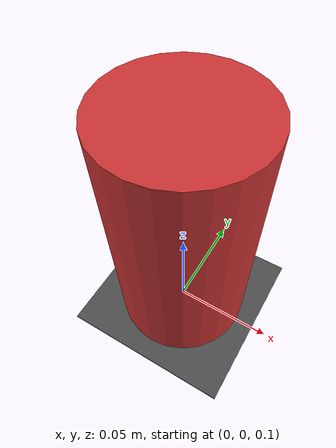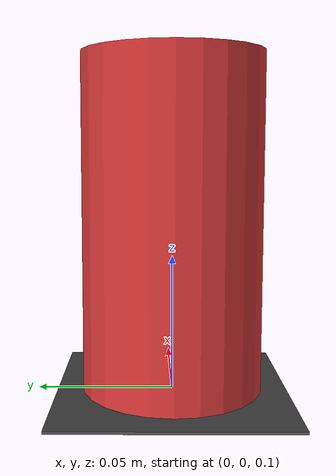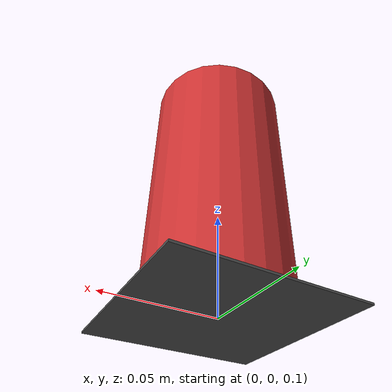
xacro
<?xml version="1.0"?>
<robot name="ft_sensor_test" xmlns:xacro="http://www.ros.org/wiki/xacro">
    <!-- Base Link -->
    <link name="world"/>

    <!-- Cover plate -->
    <link name="cover_plate">
        <inertial>
            <mass value="0.1"/>
            <origin xyz="0 0 0" rpy="0 0 0"/>
            <inertia ixx="0.0001" ixy="0.0" ixz="0.0"
                     iyy="0.0001" iyz="0.0"
                     izz="0.0001"/>
        </inertial>
        <visual>
            <geometry>
                <box size="0.085 0.085 0.001"/>
            </geometry>
            <material name="gray">
                <color rgba="0.3 0.3 0.3 1"/>
            </material>
        </visual>
        <collision>
            <geometry>
                <box size="0.085 0.085 0.001"/>
            </geometry>
        </collision>
    </link>
    <link name="coke_can">
        <inertial>
            <mass value="1.390"/>  <!-- Mass of a full 12oz can -->
            <origin xyz="0 0 0.0615" rpy="0 0 0"/>
            <inertia ixx="0.00025" ixy="0.0" ixz="0.0"
                     iyy="0.00025" iyz="0.0"
                     izz="0.00001"/>
        </inertial>
        <visual>
            <geometry>
                <cylinder radius="0.0333" length="0.123"/>  <!-- Standard can dimensions -->
            </geometry>
            <material name="red">
                <color rgba="0.8 0.2 0.2 1"/>
            </material>
        </visual>
        <collision>
            <geometry>
                <cylinder radius="0.0333" length="0.123"/>
            </geometry>
        </collision>
    </link>
    <!-- Fixed joint to world -->
    <joint name="world_joint" type="fixed">
        <parent link="world"/>
        <child link="cover_plate"/>
        <origin xyz="0 0 0.1" rpy="0 0 0"/>
    </joint>

    <!-- Sensor Link 1 -->
    <link name="sensor_link_01">
        <inertial>
            <mass value="0.1"/>
            <origin rpy="0 0 0" xyz="0 0 0"/>
            <inertia ixx="0.0001" ixy="0.0" ixz="0.0"
                     iyy="0.0001" iyz="0.0"
                     izz="0.0001"/>
        </inertial>
        <visual>
            <geometry>
                <box size="0.019 0.019 0.005"/>
            </geometry>
            <material name="blue">
                <color rgba="0.2 0.2 0.8 0.9"/>
            </material>
        </visual>
        <collision>
            <geometry>
                <box size="0.019 0.019 0.005"/>
            </geometry>
        </collision>
    </link>

    <!-- Sensor Link 2 -->
    <link name="sensor_link_02">
        <inertial>
            <mass value="0.1"/>
            <origin rpy="0 0 0" xyz="0 0 0"/>
            <inertia ixx="0.0001" ixy="0.0" ixz="0.0"
                     iyy="0.0001" iyz="0.0"
                     izz="0.0001"/>
        </inertial>
        <visual>
            <geometry>
                <box size="0.019 0.019 0.005"/>
            </geometry>
            <material name="red">
                <color rgba="0.8 0.2 0.2 0.9"/>
            </material>
        </visual>
        <collision>
            <geometry>
                <box size="0.019 0.019 0.005"/>
            </geometry>
        </collision>
    </link>
    <joint name="can_joint" type="fixed">
        <parent link="cover_plate"/>
        <child link="coke_can"/>
        <origin xyz="0 0 0.0625" rpy="0 0 0"/>  <!-- Positioned at center of plate -->
    </joint>
    <!-- Sensor Joint 1 -->
    <joint name="sensor_joint_01" type="fixed">
        <parent link="cover_plate"/>
        <child link="sensor_link_01"/>
        <origin xyz="-0.02 0 0.0025" rpy="0 0 0"/>
    </joint>

    <!-- Sensor Joint 2 -->
    <joint name="sensor_joint_02" type="fixed">
        <parent link="cover_plate"/>
        <child link="sensor_link_02"/>
        <origin xyz="0.02 0 0.0025" rpy="0 0 0"/>
    </joint>

    <!-- Gazebo-specific elements -->
    <gazebo reference="cover_plate">
        <material>Gazebo/Gray</material>
    </gazebo>

    <gazebo reference="sensor_link_01">
        <material>Gazebo/Blue</material>
    </gazebo>

    <gazebo reference="sensor_link_02">
        <material>Gazebo/Red</material>
    </gazebo>

    <!-- Force-Torque Sensor 1 Plugin -->
 <!-- Force-Torque Sensor 1 Plugin -->
<!-- Force-Torque Sensor 1 Plugin -->
<!-- Force-Torque Sensor 1 Plugin -->
    <gazebo>
        <plugin name="ft_sensor_01" filename="libgazebo_ros_ft_sensor.so">
            <ros>
                <namespace>/gazebo/default</namespace>
                <remapping>wrench:=panda/sensor_01/wrench</remapping>
            </ros>
            <joint_name>sensor_joint_01</joint_name>
            <body_name>cover_plate</body_name>
            <frame_name>sensor_link_01</frame_name>
            <gaussian_noise>0.01</gaussian_noise>
            <update_rate>50</update_rate>
        </plugin>
    </gazebo>

    <!-- Force-Torque Sensor 2 Plugin -->
    <gazebo>
        <plugin name="ft_sensor_02" filename="libgazebo_ros_ft_sensor.so">
            <ros>
                <namespace>/gazebo/default</namespace>
                <remapping>wrench:=panda/sensor_02/wrench</remapping>
            </ros>
            <joint_name>sensor_joint_02</joint_name>
            <body_name>cover_plate</body_name>
            <frame_name>sensor_link_02</frame_name>
            <gaussian_noise>0.01</gaussian_noise>
            <update_rate>50</update_rate>
        </plugin>
    </gazebo>
</robot>
